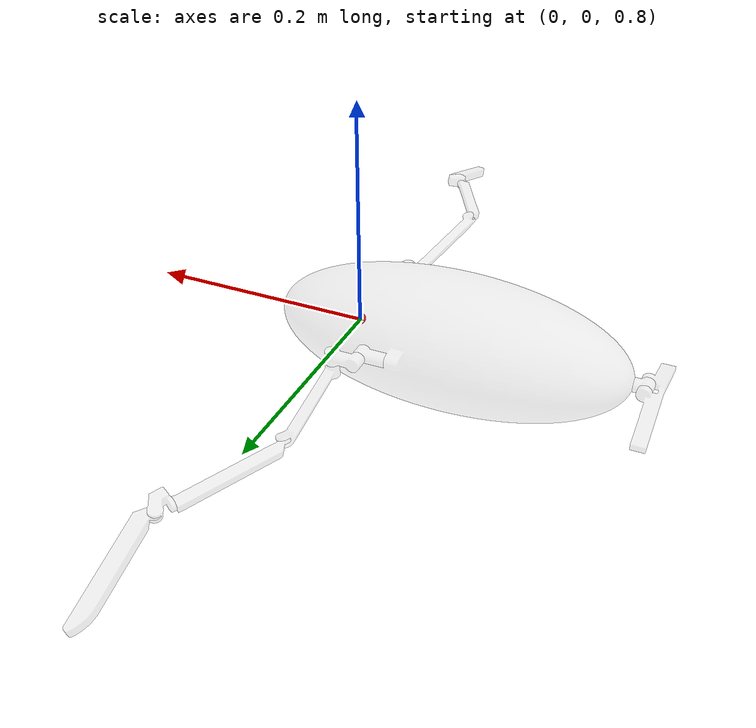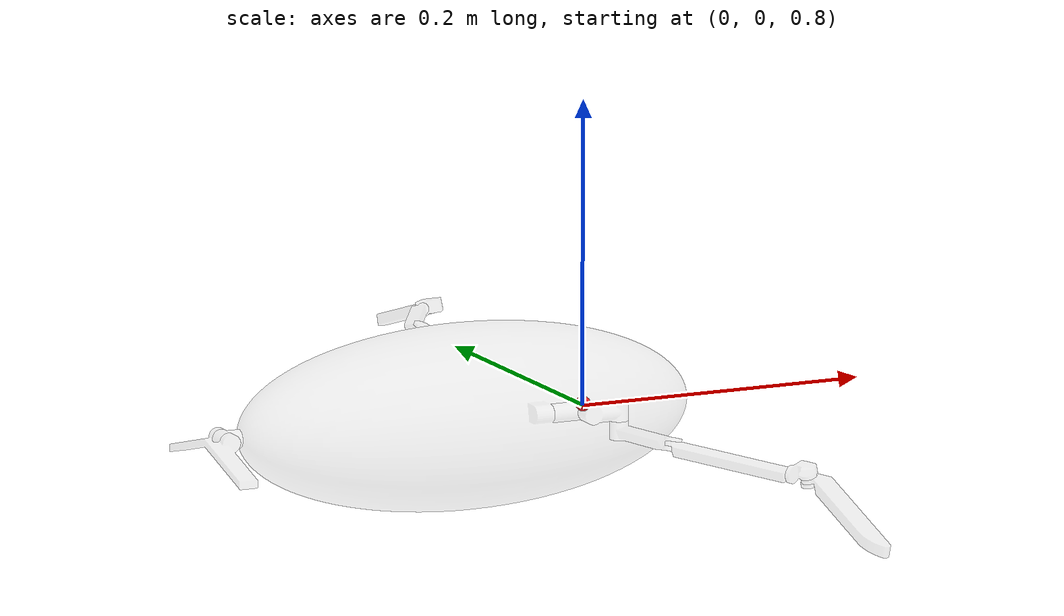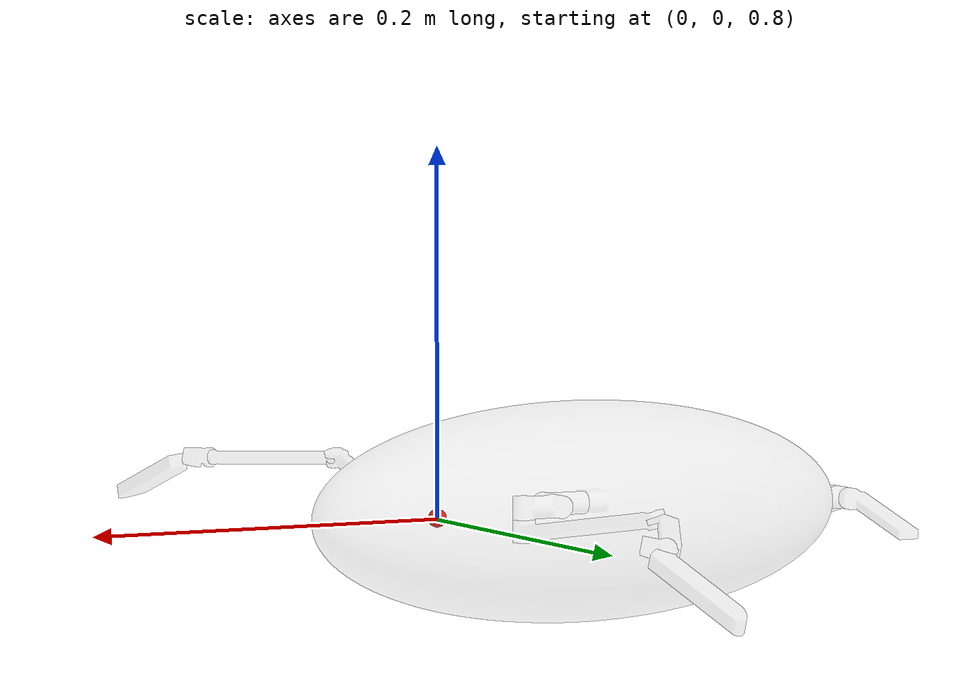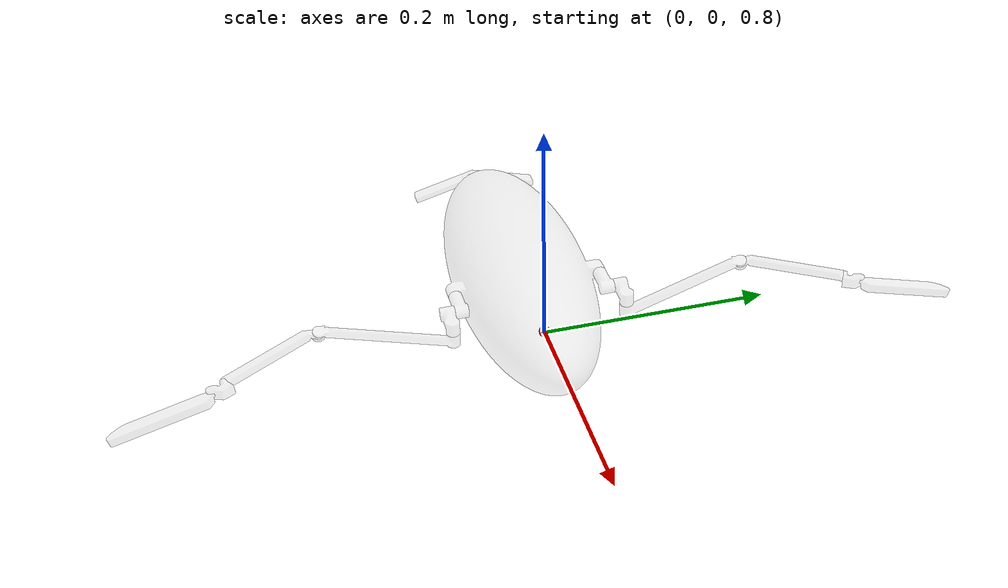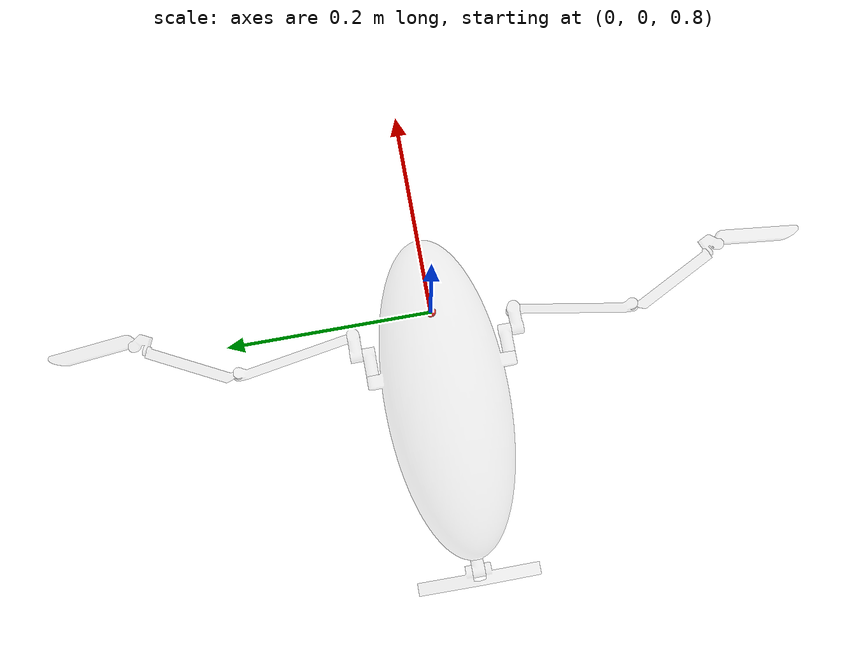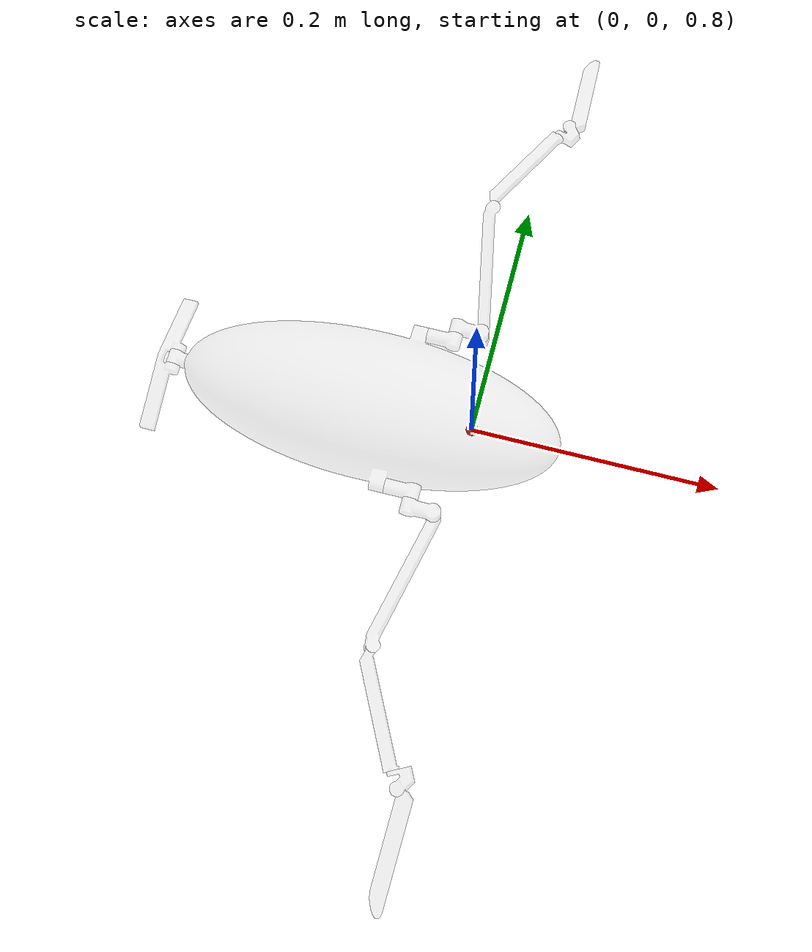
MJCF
<mujoco model="bird">
  <compiler angle="radian" meshdir="meshes/" boundmass="1e-06" boundinertia="1e-14"/>

  <default>
    <geom contype="0" conaffinity="0"/>
    <default class="damper_J1"> <joint damping="0.01"/></default>
    <default class="damper_J2"> <joint damping="0.01"/></default>
    <default class="damper_J3"> <joint damping="0.01"/></default>
    <default class="damper_J4"> <joint damping="0.01"/></default>
    <default class="damper_J5"> <joint damping="0.05"/></default>
    <default class="damper_J6"> <joint damping="0.05"/></default>
    <default class="damper_J13"><joint damping="0.01"/></default>
    <default class="damper_J14"><joint damping="0.01"/></default>
  </default>

  <asset>
    <mesh name="body"   content_type="model/stl" file="body.stl"   scale="0.001 0.001 0.001"/>
    <mesh name="RWing1" content_type="model/stl" file="RWing1.stl" scale="0.001 0.001 0.001"/>
    <mesh name="RWing2" content_type="model/stl" file="RWing2.stl" scale="0.001 0.001 0.001"/>
    <mesh name="RWing3" content_type="model/stl" file="RWing3.stl" scale="0.001 0.001 0.001"/>
    <mesh name="RWing4" content_type="model/stl" file="RWing4.stl" scale="0.001 0.001 0.001"/>
    <mesh name="RWing5" content_type="model/stl" file="RWing5.stl" scale="0.001 0.001 0.001"/>
    <mesh name="RWing6" content_type="model/stl" file="RWing6.stl" scale="0.001 0.001 0.001"/>
    <mesh name="LWing1" content_type="model/stl" file="LWing1.stl" scale="0.001 0.001 0.001"/>
    <mesh name="LWing2" content_type="model/stl" file="LWing2.stl" scale="0.001 0.001 0.001"/>
    <mesh name="LWing3" content_type="model/stl" file="LWing3.stl" scale="0.001 0.001 0.001"/>
    <mesh name="LWing4" content_type="model/stl" file="LWing4.stl" scale="0.001 0.001 0.001"/>
    <mesh name="LWing5" content_type="model/stl" file="LWing5.stl" scale="0.001 0.001 0.001"/>
    <mesh name="LWing6" content_type="model/stl" file="LWing6.stl" scale="0.001 0.001 0.001"/>
    <mesh name="Tail1" content_type="model/stl" file="Tail1.stl"   scale="0.001 0.001 0.001"/>
    <mesh name="Tail2" content_type="model/stl" file="Tail2.stl"   scale="0.001 0.001 0.001"/>
  </asset>

  <worldbody>
    <body name="body" pos="0 0 0.801">

      <camera name="body_cam" mode="fixed" pos="-1.5 0 0.3" xyaxes="0 -1 0  0 0 1" projection="perspective" fovy="5"/>

      <inertial pos="-0.04 0.0 0.0" mass="0.946680" fullinertia="0.00146143 0.00954167 0.00970986 0 -0.000201759 0"/>
      <site name="imu" pos="0 0 0" quat="1 0 0 0" size="0.005" rgba="1 0 0 1"/>
      <geom type="mesh" contype="0" conaffinity="0" group="1" density="0" rgba="0.7 0.7 0.7 0.2" mesh="body"/>
      <geom name="body_collision" type="mesh" contype="0" conaffinity="1" rgba="0.7 0.7 0.7 0.2" mesh="body"/>

      <body name="RWing1" pos="-0.054 -0.066 0.012">
        <inertial pos="0.0140954 0 0" mass="0.0142420" diaginertia="2.09460e-06 2.09460e-06 2.09460e-06"/>
        <joint name="J1" class="damper_J1" pos="0 0 0" axis="1 0 0"/>
        <geom pos="0.054 0.066 -0.012" quat="1 0 0 0" type="mesh" rgba="0.7 0.7 0.7 0.2" mesh="RWing1"/>

        <body name="RWing2" pos="0.022 -0.006 0">
          <inertial pos="0.01 -0.006 0" mass="0.0236670" diaginertia="4.88338e-06 4.88338e-06 4.88338e-06"/>
          <joint name="J2" class="damper_J2" pos="0 0 0" axis="0 -1 0"/>
          <geom pos="0.032 0.072 -0.012" quat="1 0 0 0" type="mesh" rgba="0.7 0.7 0.7 0.2" mesh="RWing2"/>

          <body name="RWing3" pos="0.02 -0.006 -0.006">
            <inertial pos="-0.00832606 -0.0495296 0.000252962" quat="0.352206 0.184514 -0.613148 0.682609" mass="0.0236670" diaginertia="4.28992e-04 4.02883e-04 2.61125e-05"/>
            <joint name="J3" class="damper_J3" pos="0 0 0" axis="0 0 1"/>
            <geom pos="0.012 0.078 -0.006" quat="1 0 0 0" type="mesh" rgba="0.7 0.7 0.7 0.2" mesh="RWing3"/>

            <body name="RWing4" pos="-0.017385 -0.112374 0.010924">
              <inertial pos="0.0159714 -0.0443005 -0.00446237" quat="0.680193 0.680193 0.193229 0.193229" mass="0.0355005" diaginertia="5.93099e-04 5.63362e-04 2.97498e-05"/>
              <joint name="J4" class="damper_J4" pos="0 0 0" axis="0.272948 0.181163 0.944817"/>
              <geom pos="0.029385 0.190374 -0.016924" quat="1 0 0 0" type="mesh" rgba="0.7 0.7 0.7 0.2" mesh="RWing4"/>

              <body name="RWing5" pos="0.038473 -0.083152 -0.006535">
                <inertial pos="0.00762387 -0.00474471 0.000283107" mass="0.00591675" diaginertia="4.84493e-07 4.84493e-07 4.84493e-07"/>
                <joint name="J5" class="damper_J5" pos="0 0 0" axis="0.46039 -0.885988 -0.055365"/>
                <geom pos="-0.009088 0.273526 -0.010389" quat="1 0 0 0" type="mesh" rgba="0.7 0.7 0.7 0.2" mesh="RWing5"/>

                <body name="RWing6" pos="0.00608 -0.012127 0.000242">
                  <inertial pos="0.00535555 -0.0427722 -0.0148432" quat="0.438819 0.554471 -0.554471 0.438819" mass="0.0236670" diaginertia="1.49533e-05 1.42791e-05 2.18166e-06"/>
                  <joint name="J6" class="damper_J6" pos="0 0 0" axis="-0.259868 -0.096705 0.96079"/>
                  <geom pos="-0.015168 0.285653 -0.010631" quat="1 0 0 0" type="mesh" rgba="0.7 0.7 0.7 0.2" mesh="RWing6"/>
                </body>
              </body>
            </body>
          </body>
        </body>
      </body>

      <body name="LWing1" pos="-0.054 0.066 0.012">
        <inertial pos="0.0140954 0 0" mass="0.0142420" diaginertia="2.09460e-06 2.09460e-06 2.09460e-06"/>
        <joint name="J7" class="damper_J1" pos="0 0 0" axis="-1 0 0"/>
        <geom pos="0.054 -0.066 -0.012" quat="1 0 0 0" type="mesh" rgba="0.7 0.7 0.7 0.2" mesh="LWing1"/>

        <body name="LWing2" pos="0.022 0.006 0">
          <inertial pos="0.01 0.006 0" mass="0.0236670" diaginertia="4.88338e-06 4.88338e-06 4.88338e-06"/>
          <joint name="J8" class="damper_J2" pos="0 0 0" axis="0 -1 0"/>
          <geom pos="0.032 -0.072 -0.012" quat="1 0 0 0" type="mesh" rgba="0.7 0.7 0.7 0.2" mesh="LWing2"/>

          <body name="LWing3" pos="0.02 0.006 -0.006">
            <inertial pos="-0.00832606 0.0495296 0.000252962" quat="0.184514 0.352206 -0.682609 0.613148" mass="0.0236670" diaginertia="4.28992e-04 4.02883e-04 2.61125e-05"/>
            <joint name="J9" class="damper_J3" pos="0 0 0" axis="0 0 -1"/>
            <geom pos="0.012 -0.078 -0.006" quat="1 0 0 0" type="mesh" rgba="0.7 0.7 0.7 0.2" mesh="LWing3"/>

            <body name="LWing4" pos="-0.017385 0.112374 0.010924">
              <inertial pos="0.0159714 0.0443005 -0.00446237" quat="0.680193 0.680193 -0.193229 -0.193229" mass="0.0355005" diaginertia="5.93099e-04 5.63362e-04 2.97498e-05"/>
              <joint name="J10" class="damper_J4" pos="0 0 0" axis="-0.272948 0.181163 -0.944817"/>
              <geom pos="0.029385 -0.190374 -0.016924" quat="1 0 0 0" type="mesh" rgba="0.7 0.7 0.7 0.2" mesh="LWing4"/>

              <body name="LWing5" pos="0.038473 0.083152 -0.006535">
                <inertial pos="0.00762387 0.00474471 0.000283107" mass="0.00591675" diaginertia="4.84493e-07 4.84493e-07 4.84493e-07"/>
                <joint name="J11" class="damper_J5" pos="0 0 0" axis="-0.46039 -0.885988 0.055365"/>
                <geom pos="-0.009088 -0.273526 -0.010389" quat="1 0 0 0" type="mesh" rgba="0.7 0.7 0.7 0.2" mesh="LWing5"/>

                <body name="LWing6" pos="0.00608 0.012127 0.000242">
                  <inertial pos="0.00535555 0.0427722 -0.0148432" quat="0.554471 0.438819 -0.438819 0.554471" mass="0.0236670" diaginertia="1.49533e-05 1.42791e-05 2.18166e-06"/>
                  <joint name="J12" class="damper_J6" pos="0 0 0" axis="0.259868 -0.096705 -0.96079"/>
                  <geom pos="-0.015168 -0.285653 -0.010631" quat="1 0 0 0" type="mesh" rgba="0.7 0.7 0.7 0.2" mesh="LWing6"/>
                </body>
              </body>
            </body>
          </body>
        </body>
      </body>

      <body name="Tail1" pos="-0.24 0 0">
        <inertial pos="-0.00784114 0 0" mass="0.00202687" diaginertia="4.1532e-8 5.6941e-8 5.9792e-8"/>
        <joint name="J13" class="damper_J13" pos="0 0 0" axis="-1 0 0"/>
        <geom pos="0.24 0 0" type="mesh" rgba="0.7 0.7 0.7 0.2" mesh="Tail1"/>

        <body name="Tail2" pos="-0.01 0.006 0">
          <inertial pos="-0.00682041 -0.006 -0.00703685" mass="0.020" fullinertia="2.16073e-5 9.92721e-7 2.14686e-5 0 -1.72731e-7 0"/>
          <joint name="J14" class="damper_J14" pos="0 0 0" axis="0 1 0"/>
          <geom pos="0.25 -0.006 0" type="mesh" rgba="0.7 0.7 0.7 0.2" mesh="Tail2"/>
        </body>
      </body>
    </body>
  </worldbody>

  <actuator>
    <motor name="motor_J1"  joint="J1"  gear="1" ctrllimited="false"/>
    <motor name="motor_J2"  joint="J2"  gear="1" ctrllimited="false"/>
    <motor name="motor_J3"  joint="J3"  gear="1" ctrllimited="false"/>
    <motor name="motor_J4"  joint="J4"  gear="1" ctrllimited="false"/>
    <motor name="motor_J5"  joint="J5"  gear="1" ctrllimited="false"/>
    <motor name="motor_J6"  joint="J6"  gear="1" ctrllimited="false"/>
    <motor name="motor_J7"  joint="J7"  gear="1" ctrllimited="false"/>
    <motor name="motor_J8"  joint="J8"  gear="1" ctrllimited="false"/>
    <motor name="motor_J9"  joint="J9"  gear="1" ctrllimited="false"/>
    <motor name="motor_J10" joint="J10" gear="1" ctrllimited="false"/>
    <motor name="motor_J11" joint="J11" gear="1" ctrllimited="false"/>
    <motor name="motor_J12" joint="J12" gear="1" ctrllimited="false"/>
    <motor name="motor_J13" joint="J13" gear="1" ctrllimited="false"/>
    <motor name="motor_J14" joint="J14" gear="1" ctrllimited="false"/>
  </actuator>

  <sensor>
    <framepos name="imu_pos" objtype="site" objname="imu"/>
    <framelinvel name="imu_vel" objtype="site" objname="imu"/>
    <framelinacc name="imu_acc" objtype="site" objname="imu"/>
    <framequat name="imu_quat" objtype="site" objname="imu"/>
    <gyro name="imu_gyro" site="imu"/>
    <frameangacc name="imu_angacc" objtype="site" objname="imu"/>
  </sensor>
</mujoco>
